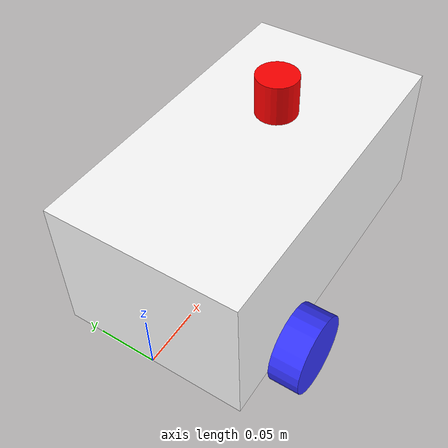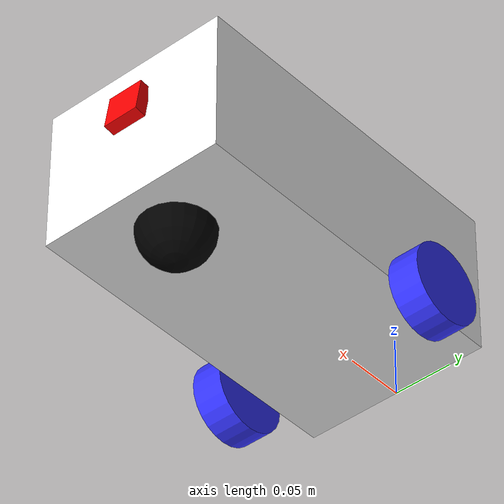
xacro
<?xml version="1.0"?>
<robot xmlns:xacro="http://www.ros.org/wiki/xacro"  name="robot">

    <xacro:arg name="use_ros2_control" default="true" />
    <xacro:arg name="sim_mode" default="true" />

    <xacro:include filename="robot_core.xacro" />

    <xacro:if value="$(arg use_ros2_control)">
        <xacro:include filename="ros2_control.xacro" />
    </xacro:if>

    <xacro:unless value="$(arg use_ros2_control)">
        <xacro:include filename="gazebo_control.xacro" />
    </xacro:unless>

    <xacro:include filename="lidar.xacro" />
    <xacro:include filename="camera.xacro" />

</robot>

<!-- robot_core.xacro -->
<robot xmlns:xacro="http://www.ros.org/wiki/xacro" >

    <xacro:include filename="inertial_macros.xacro" />

    <material name="white">
        <color rgba="1 1 1 1"/>
    </material>

    <material name="orange">
        <color rgba="1 0.3 0.1 1"/>
    </material>

    <material name="blue">
        <color rgba="0.2 0.2 1 1"/>
    </material>

    <material name="black">
        <color rgba="0 0 0 1"/>
    </material>

    <material name="red">
        <color rgba="1 0 0 1"/>
    </material>

    <!-- BASE LINK -->

    <link name="base_link">

    </link>

    <!-- BASE_FOOTPRINT LINK -->

    <joint name="base_footprint_joint" type="fixed">
        <parent link="base_link"/>
        <child link="base_footprint"/>
        <origin xyz="0 0 0" rpy="0 0 0"/>
    </joint>

    <link name="base_footprint">
    </link>

    <!-- CHASSIS LINK -->

    <joint name="chassis_joint" type="fixed">
        <parent link="base_link"/>
        <child link="chassis"/>
        <origin xyz="0 0 0"/>
    </joint>

    <link name="chassis">
        <visual>
            <origin xyz="0.144 0 0.061"/>  <!-- se desplaza xyz= x/2 0 z/2 para no estar en el centro del grid, a z sumar el radio de la rueda -->
            <geometry>
                <box size="0.288 0.16 0.122"/> <!-- Dimensiones del cuerpo -->
            </geometry>
            <material name="white"/>
        </visual>
        <collision>
            <origin xyz="0.144 0 0.061"/>
            <geometry>
                <box size="0.288 0.16 0.122"/>
            </geometry>
        </collision>
        <xacro:inertial_box mass="2" x="0.288" y="0.16" z="0.122">
            <origin xyz="0.144 0 0.061" rpy="0 0 0"/>
        </xacro:inertial_box>
    </link>

    <gazebo reference="chassis">
        <material>Gazebo/White</material>
    </gazebo>

    <!-- LEFT WHEEL LINK -->

    <joint name="left_wheel_joint" type="continuous">
        <parent link="base_link"/>
        <child link="left_wheel"/>
        <origin xyz="0.072 0.093 0" rpy="-${pi/2} 0 0"/> <!-- A 9.3 cm en y del base_link, y rotado a 90 en x -->
        <axis xyz="0 0 1"/>
    </joint>

    <link name="left_wheel">
        <visual>
            <geometry>
                <cylinder length="0.026" radius="0.0335" />
            </geometry>
            <material name="blue"/>
        </visual>
        <collision>
            <geometry>
                <cylinder length="0.026" radius="0.0335" />
            </geometry>
        </collision>
        <xacro:inertial_cylinder mass="0.1" length="0.026" radius="0.0335">
            <origin xyz="0 0 0" rpy="0 0 0"/>
        </xacro:inertial_cylinder>
    </link>

    <gazebo reference="left_wheel">
        <material>Gazebo/Blue</material>
    </gazebo>

    <!-- RIGHT WHEEL -->

    <joint name="right_wheel_joint" type="continuous">
        <parent link="base_link"/>
        <child link="right_wheel"/>
        <origin xyz="0.072 -0.093 0" rpy="${pi/2} 0 0"/>
        <axis xyz="0 0 -1"/>
    </joint>

    <link name="right_wheel">
        <visual>
            <geometry>
                <cylinder length="0.026" radius="0.0335" />
            </geometry>
            <material name="blue"/>
        </visual>
        <collision>
            <geometry>
                <cylinder length="0.026" radius="0.0335" />
            </geometry>
        </collision>
        <xacro:inertial_cylinder mass="0.1" length="0.026" radius="0.0335">
            <origin xyz="0 0 0" rpy="0 0 0"/>
        </xacro:inertial_cylinder>
    </link>

    <gazebo reference="right_wheel">
        <material>Gazebo/Blue</material>
    </gazebo>

    <!-- CASTER WHEEL -->

    <joint name="caster_wheel_joint" type="fixed">
        <parent link="chassis"/>
        <child link="caster_wheel"/>
        <origin xyz="0.24 0 0" rpy="0 0 0"/>
    </joint>

    <link name="caster_wheel">
        <visual>
            <geometry>
                <sphere radius="0.03" />
            </geometry>
            <material name="black"/>
        </visual>
        <collision>
            <geometry>
                <sphere radius="0.03" />
            </geometry>
        </collision>
        <xacro:inertial_sphere mass="0.01" radius="0.03">
            <origin xyz="0 0 0" rpy="0 0 0"/>
        </xacro:inertial_sphere>
    </link>
    <gazebo reference="caster_wheel">
        <material>Gazebo/Black</material>
        <mu1 value="0.001"/>
        <mu2 value="0.001"/>
    </gazebo>

</robot>

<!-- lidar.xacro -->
<robot xmlns:xacro="http://www.ros.org/wiki/xacro" >

    <joint name="laser_joint" type="fixed">
        <parent link="chassis"/>
        <child link="laser_frame"/>
        <origin xyz="0.18 0 0.140" rpy="0 0 0"/>
    </joint>

    <link name="laser_frame">
        <visual>
            <geometry>
                <cylinder radius="0.018" length="0.035"/>
            </geometry>
            <material name="red"/>
        </visual>
        <collision>
            <geometry>
                <cylinder radius="0.018" length="0.035"/>
            </geometry>
        </collision>
        <xacro:inertial_cylinder mass="0.1" length="0.035" radius="0.02">
            <origin xyz="0 0 0" rpy="0 0 0"/>
        </xacro:inertial_cylinder>
    </link>

    <gazebo reference="laser_frame">
        <material>Gazebo/Red</material>
        <sensor name="laser" type="ray">
            <pose> 0 0 0 0 0 0 </pose>
            <visualize>false</visualize>
            <update_rate>10</update_rate>
            <ray>
                <scan>
                    <horizontal>
                        <samples>360</samples>
                        <min_angle>-3.14</min_angle>
                        <max_angle>3.14</max_angle>
                    </horizontal>
                </scan>
                <range>
                    <min>0.3</min>
                    <max>12</max>
                </range>
            </ray>
            <plugin name="laser_controller" filename="libgazebo_ros_ray_sensor.so">
                <ros>
                    <argument>~/out:=scan</argument>
                </ros>
                <output_type>sensor_msgs/LaserScan</output_type>
                <frame_name>laser_frame</frame_name>
            </plugin>
        </sensor>

    </gazebo>

</robot>

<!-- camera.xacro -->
<robot xmlns:xacro="http://www.ros.org/wiki/xacro" >

    <joint name="camera_joint" type="fixed">
        <parent link="chassis"/>
        <child link="camera_link"/>
        <origin xyz="0.293 0 0.08" rpy="0 -0.15 0"/> <!-- Ubicacion de la camara -->
    </joint>

    <link name="camera_link">
        <visual>
            <geometry>
                <box size="0.010 0.03 0.03" />
            </geometry>
            <material name="red"/>
        </visual>
    </link>

    <joint name="camera_optical_joint" type="fixed">
        <parent link="camera_link"/>
        <child link="camera_link_optical"/>
        <origin xyz="0 0 0" rpy="${-pi/2} 0 ${-pi/2}"/>
    </joint>

    <link name="camera_link_optical"></link>

    <gazebo reference="camera_link">
        <material>Gazebo/Red</material>
        <sensor name="camera" type="camera">
            <pose> 0 0 0 0 0 0 </pose>
            <visualize>true</visualize>
            <update_rate>10</update_rate>
            <camera>
                <horizontal_fov>1.089</horizontal_fov>
                <image>
                    <format>R8G8B8</format>
                    <width>640</width>
                    <height>480</height>
                </image>
                <clip>
                    <near>0.05</near>
                    <far>8.0</far>
                </clip>
            </camera>
            <plugin name="camera_controller" filename="libgazebo_ros_camera.so">
                <frame_name>camera_link_optical</frame_name>
            </plugin>
        </sensor>
    </gazebo>
</robot>
